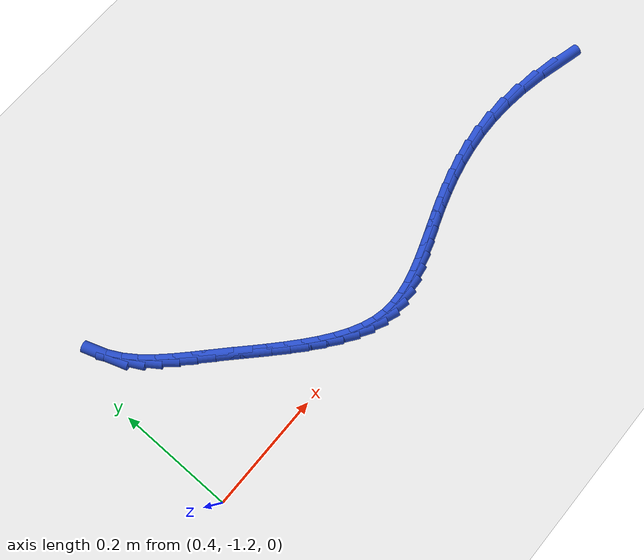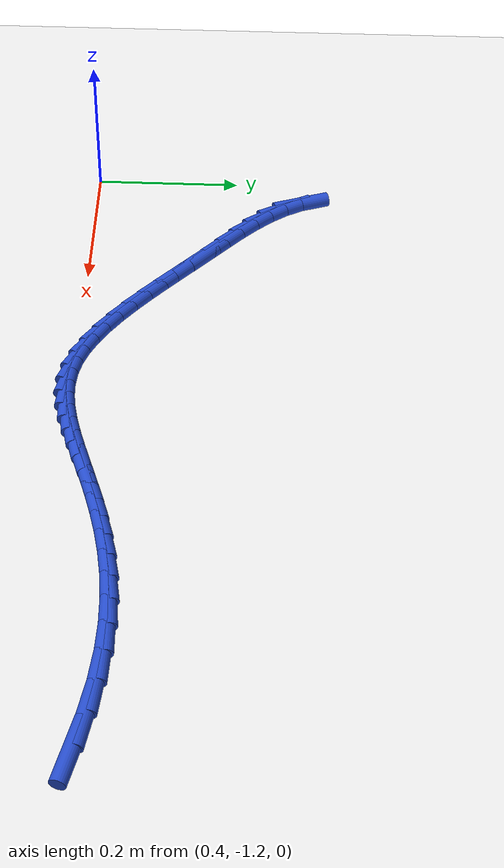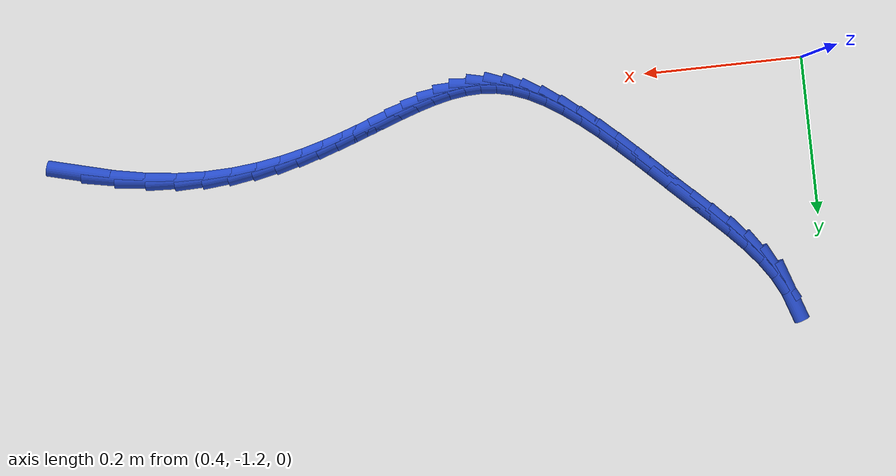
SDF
<sdf version="1.6">
 <world name="default">
  <model name="ground_plane">
   <static>1</static>
   <link name="link">
    <collision name="collision">
     <geometry><plane><normal>0 0 1</normal><size>100 100</size></plane></geometry>
     <surface><friction><ode><mu>100</mu><mu2>50</mu2></ode></friction></surface>
    </collision>
    <visual name="visual">
     <cast_shadows>0</cast_shadows>
     <geometry><plane><normal>0 0 1</normal><size>100 100</size></plane></geometry>
     <material>
      <script><uri>file://media/materials/scripts/gazebo.material</uri><name>Gazebo/WhiteGlow</name></script>
     </material>
    </visual>
   </link>
  </model>
  <model name="line">
   <link name="link_214">
    <pose>1.322616832892454 -1.1521787438533626 0.01 0 1.57 -0.25327737151940743</pose>
    <collision name="collision">
     <geometry><cylinder><radius>0.01</radius><length>0.08</length></cylinder></geometry>
    </collision>
    <visual name="visual">
     <material>
      <script><name>Gazebo/Blue</name><uri>file://media/materials/scripts/gazebo.material</uri></script>
     </material>
     <geometry><cylinder><radius>0.01</radius><length>0.08</length></cylinder></geometry>
    </visual>
   </link>
   <link name="link_215">
    <pose>1.2797320611597838 -1.141078624843671 0.01 0 1.57 -0.18833244084223533</pose>
    <collision name="collision">
     <geometry><cylinder><radius>0.01</radius><length>0.08</length></cylinder></geometry>
    </collision>
    <visual name="visual">
     <material>
      <script><name>Gazebo/Blue</name><uri>file://media/materials/scripts/gazebo.material</uri></script>
     </material>
     <geometry><cylinder><radius>0.01</radius><length>0.08</length></cylinder></geometry>
    </visual>
   </link>
   <link name="link_216">
    <pose>1.2388287740997233 -1.1332828201885006 0.01 0 1.57 -0.11613769736238322</pose>
    <collision name="collision">
     <geometry><cylinder><radius>0.01</radius><length>0.08</length></cylinder></geometry>
    </collision>
    <visual name="visual">
     <material>
      <script><name>Gazebo/Blue</name><uri>file://media/materials/scripts/gazebo.material</uri></script>
     </material>
     <geometry><cylinder><radius>0.01</radius><length>0.08</length></cylinder></geometry>
    </visual>
   </link>
   <link name="link_217">
    <pose>1.2002915263124383 -1.1287869614405426 0.01 0 1.57 -0.043032953816491144</pose>
    <collision name="collision">
     <geometry><cylinder><radius>0.01</radius><length>0.08</length></cylinder></geometry>
    </collision>
    <visual name="visual">
     <material>
      <script><name>Gazebo/Blue</name><uri>file://media/materials/scripts/gazebo.material</uri></script>
     </material>
     <geometry><cylinder><radius>0.01</radius><length>0.08</length></cylinder></geometry>
    </visual>
   </link>
   <link name="link_218">
    <pose>1.1639764863707767 -1.1272232526410821 0.01 0 1.57 0.029198336507495697</pose>
    <collision name="collision">
     <geometry><cylinder><radius>0.01</radius><length>0.08</length></cylinder></geometry>
    </collision>
    <visual name="visual">
     <material>
      <script><name>Gazebo/Blue</name><uri>file://media/materials/scripts/gazebo.material</uri></script>
     </material>
     <geometry><cylinder><radius>0.01</radius><length>0.08</length></cylinder></geometry>
    </visual>
   </link>
   <link name="link_219">
    <pose>1.1297388362713248 -1.128223219257529 0.01 0 1.57 0.09858541107569821</pose>
    <collision name="collision">
     <geometry><cylinder><radius>0.01</radius><length>0.08</length></cylinder></geometry>
    </collision>
    <visual name="visual">
     <material>
      <script><name>Gazebo/Blue</name><uri>file://media/materials/scripts/gazebo.material</uri></script>
     </material>
     <geometry><cylinder><radius>0.01</radius><length>0.08</length></cylinder></geometry>
    </visual>
   </link>
   <link name="link_220">
    <pose>1.097433758010672 -1.1314183867572931 0.01 0 1.57 0.16309706781129438</pose>
    <collision name="collision">
     <geometry><cylinder><radius>0.01</radius><length>0.08</length></cylinder></geometry>
    </collision>
    <visual name="visual">
     <material>
      <script><name>Gazebo/Blue</name><uri>file://media/materials/scripts/gazebo.material</uri></script>
     </material>
     <geometry><cylinder><radius>0.01</radius><length>0.08</length></cylinder></geometry>
    </visual>
   </link>
   <link name="link_221">
    <pose>1.0669164335854042 -1.1364402806077842 0.01 0 1.57 0.22076744469772175</pose>
    <collision name="collision">
     <geometry><cylinder><radius>0.01</radius><length>0.08</length></cylinder></geometry>
    </collision>
    <visual name="visual">
     <material>
      <script><name>Gazebo/Blue</name><uri>file://media/materials/scripts/gazebo.material</uri></script>
     </material>
     <geometry><cylinder><radius>0.01</radius><length>0.08</length></cylinder></geometry>
    </visual>
   </link>
   <link name="link_222">
    <pose>1.0380420449921102 -1.142920426276411 0.01 0 1.57 0.26977324692714455</pose>
    <collision name="collision">
     <geometry><cylinder><radius>0.01</radius><length>0.08</length></cylinder></geometry>
    </collision>
    <visual name="visual">
     <material>
      <script><name>Gazebo/Blue</name><uri>file://media/materials/scripts/gazebo.material</uri></script>
     </material>
     <geometry><cylinder><radius>0.01</radius><length>0.08</length></cylinder></geometry>
    </visual>
   </link>
   <link name="link_223">
    <pose>1.010665774227377 -1.1504903492305838 0.01 0 1.57 0.3084431883393934</pose>
    <collision name="collision">
     <geometry><cylinder><radius>0.01</radius><length>0.08</length></cylinder></geometry>
    </collision>
    <visual name="visual">
     <material>
      <script><name>Gazebo/Blue</name><uri>file://media/materials/scripts/gazebo.material</uri></script>
     </material>
     <geometry><cylinder><radius>0.01</radius><length>0.08</length></cylinder></geometry>
    </visual>
   </link>
   <link name="link_224">
    <pose>0.9846428032877926 -1.1587815749377126 0.01 0 1.57 0.33520149432809365</pose>
    <collision name="collision">
     <geometry><cylinder><radius>0.01</radius><length>0.08</length></cylinder></geometry>
    </collision>
    <visual name="visual">
     <material>
      <script><name>Gazebo/Blue</name><uri>file://media/materials/scripts/gazebo.material</uri></script>
     </material>
     <geometry><cylinder><radius>0.01</radius><length>0.08</length></cylinder></geometry>
    </visual>
   </link>
   <link name="link_225">
    <pose>0.9598283141699443 -1.1674256288652056 0.01 0 1.57 0.34846395217380877</pose>
    <collision name="collision">
     <geometry><cylinder><radius>0.01</radius><length>0.08</length></cylinder></geometry>
    </collision>
    <visual name="visual">
     <material>
      <script><name>Gazebo/Blue</name><uri>file://media/materials/scripts/gazebo.material</uri></script>
     </material>
     <geometry><cylinder><radius>0.01</radius><length>0.08</length></cylinder></geometry>
    </visual>
   </link>
   <link name="link_226">
    <pose>0.93607748887042 -1.176054036480474 0.01 0 1.57 0.346515821767103</pose>
    <collision name="collision">
     <geometry><cylinder><radius>0.01</radius><length>0.08</length></cylinder></geometry>
    </collision>
    <visual name="visual">
     <material>
      <script><name>Gazebo/Blue</name><uri>file://media/materials/scripts/gazebo.material</uri></script>
     </material>
     <geometry><cylinder><radius>0.01</radius><length>0.08</length></cylinder></geometry>
    </visual>
   </link>
   <link name="link_227">
    <pose>0.9132455093858071 -1.1842983232509265 0.01 0 1.57 0.3274128764510943</pose>
    <collision name="collision">
     <geometry><cylinder><radius>0.01</radius><length>0.08</length></cylinder></geometry>
    </collision>
    <visual name="visual">
     <material>
      <script><name>Gazebo/Blue</name><uri>file://media/materials/scripts/gazebo.material</uri></script>
     </material>
     <geometry><cylinder><radius>0.01</radius><length>0.08</length></cylinder></geometry>
    </visual>
   </link>
   <link name="link_228">
    <pose>0.8911875577126933 -1.191790014643973 0.01 0 1.57 0.28897174155513683</pose>
    <collision name="collision">
     <geometry><cylinder><radius>0.01</radius><length>0.08</length></cylinder></geometry>
    </collision>
    <visual name="visual">
     <material>
      <script><name>Gazebo/Blue</name><uri>file://media/materials/scripts/gazebo.material</uri></script>
     </material>
     <geometry><cylinder><radius>0.01</radius><length>0.08</length></cylinder></geometry>
    </visual>
   </link>
   <link name="link_229">
    <pose>0.8697588158476663 -1.1981606361270232 0.01 0 1.57 0.22896304311701524</pose>
    <collision name="collision">
     <geometry><cylinder><radius>0.01</radius><length>0.08</length></cylinder></geometry>
    </collision>
    <visual name="visual">
     <material>
      <script><name>Gazebo/Blue</name><uri>file://media/materials/scripts/gazebo.material</uri></script>
     </material>
     <geometry><cylinder><radius>0.01</radius><length>0.08</length></cylinder></geometry>
    </visual>
   </link>
   <link name="link_230">
    <pose>0.8488144657873139 -1.203041713167487 0.01 0 1.57 0.14567704107339596</pose>
    <collision name="collision">
     <geometry><cylinder><radius>0.01</radius><length>0.08</length></cylinder></geometry>
    </collision>
    <visual name="visual">
     <material>
      <script><name>Gazebo/Blue</name><uri>file://media/materials/scripts/gazebo.material</uri></script>
     </material>
     <geometry><cylinder><radius>0.01</radius><length>0.08</length></cylinder></geometry>
    </visual>
   </link>
   <link name="link_231">
    <pose>0.8282096895282233 -1.206064771232773 0.01 0 1.57 0.039008313960391755</pose>
    <collision name="collision">
     <geometry><cylinder><radius>0.01</radius><length>0.08</length></cylinder></geometry>
    </collision>
    <visual name="visual">
     <material>
      <script><name>Gazebo/Blue</name><uri>file://media/materials/scripts/gazebo.material</uri></script>
     </material>
     <geometry><cylinder><radius>0.01</radius><length>0.08</length></cylinder></geometry>
    </visual>
   </link>
   <link name="link_232">
    <pose>0.8077996690669824 -1.206861335790292 0.01 0 1.57 -0.08810121935314982</pose>
    <collision name="collision">
     <geometry><cylinder><radius>0.01</radius><length>0.08</length></cylinder></geometry>
    </collision>
    <visual name="visual">
     <material>
      <script><name>Gazebo/Blue</name><uri>file://media/materials/scripts/gazebo.material</uri></script>
     </material>
     <geometry><cylinder><radius>0.01</radius><length>0.08</length></cylinder></geometry>
    </visual>
   </link>
   <link name="link_233">
    <pose>0.7874395864001795 -1.2050629323074529 0.01 0 1.57 -0.2287228642058505</pose>
    <collision name="collision">
     <geometry><cylinder><radius>0.01</radius><length>0.08</length></cylinder></geometry>
    </collision>
    <visual name="visual">
     <material>
      <script><name>Gazebo/Blue</name><uri>file://media/materials/scripts/gazebo.material</uri></script>
     </material>
     <geometry><cylinder><radius>0.01</radius><length>0.08</length></cylinder></geometry>
    </visual>
   </link>
   <link name="link_234">
    <pose>0.7669846235244007 -1.2003010862516656 0.01 0 1.57 -0.36886276474908986</pose>
    <collision name="collision">
     <geometry><cylinder><radius>0.01</radius><length>0.08</length></cylinder></geometry>
    </collision>
    <visual name="visual">
     <material>
      <script><name>Gazebo/Blue</name><uri>file://media/materials/scripts/gazebo.material</uri></script>
     </material>
     <geometry><cylinder><radius>0.01</radius><length>0.08</length></cylinder></geometry>
    </visual>
   </link>
   <link name="link_235">
    <pose>0.7463140542827762 -1.1923107656877956 0.01 0 1.57 -0.48384528377010083</pose>
    <collision name="collision">
     <geometry><cylinder><radius>0.01</radius><length>0.08</length></cylinder></geometry>
    </collision>
    <visual name="visual">
     <material>
      <script><name>Gazebo/Blue</name><uri>file://media/materials/scripts/gazebo.material</uri></script>
     </material>
     <geometry><cylinder><radius>0.01</radius><length>0.08</length></cylinder></geometry>
    </visual>
   </link>
   <link name="link_236">
    <pose>0.7254251219291145 -1.181333461177431 0.01 0 1.57 -0.5720232409185585</pose>
    <collision name="collision">
     <geometry><cylinder><radius>0.01</radius><length>0.08</length></cylinder></geometry>
    </collision>
    <visual name="visual">
     <material>
      <script><name>Gazebo/Blue</name><uri>file://media/materials/scripts/gazebo.material</uri></script>
     </material>
     <geometry><cylinder><radius>0.01</radius><length>0.08</length></cylinder></geometry>
    </visual>
   </link>
   <link name="link_237">
    <pose>0.7043511210496612 -1.1677654560442094 0.01 0 1.57 -0.6387522099463929</pose>
    <collision name="collision">
     <geometry><cylinder><radius>0.01</radius><length>0.08</length></cylinder></geometry>
    </collision>
    <visual name="visual">
     <material>
      <script><name>Gazebo/Blue</name><uri>file://media/materials/scripts/gazebo.material</uri></script>
     </material>
     <geometry><cylinder><radius>0.01</radius><length>0.08</length></cylinder></geometry>
    </visual>
   </link>
   <link name="link_238">
    <pose>0.683125355257139 -1.1520030723685397 0.01 0 1.57 -0.6884451736848316</pose>
    <collision name="collision">
     <geometry><cylinder><radius>0.01</radius><length>0.08</length></cylinder></geometry>
    </collision>
    <visual name="visual">
     <material>
      <script><name>Gazebo/Blue</name><uri>file://media/materials/scripts/gazebo.material</uri></script>
     </material>
     <geometry><cylinder><radius>0.01</radius><length>0.08</length></cylinder></geometry>
    </visual>
   </link>
   <link name="link_239">
    <pose>0.6617811281642705 -1.1344426322308312 0.01 0 1.57 -0.7243916381162762</pose>
    <collision name="collision">
     <geometry><cylinder><radius>0.01</radius><length>0.08</length></cylinder></geometry>
    </collision>
    <visual name="visual">
     <material>
      <script><name>Gazebo/Blue</name><uri>file://media/materials/scripts/gazebo.material</uri></script>
     </material>
     <geometry><cylinder><radius>0.01</radius><length>0.08</length></cylinder></geometry>
    </visual>
   </link>
   <link name="link_240">
    <pose>0.6403517433837775 -1.1154804577114927 0.01 0 1.57 -0.7488958095648307</pose>
    <collision name="collision">
     <geometry><cylinder><radius>0.01</radius><length>0.08</length></cylinder></geometry>
    </collision>
    <visual name="visual">
     <material>
      <script><name>Gazebo/Blue</name><uri>file://media/materials/scripts/gazebo.material</uri></script>
     </material>
     <geometry><cylinder><radius>0.01</radius><length>0.08</length></cylinder></geometry>
    </visual>
   </link>
   <link name="link_241">
    <pose>0.6188705045283833 -1.0955128708909339 0.01 0 1.57 -0.7634627611204864</pose>
    <collision name="collision">
     <geometry><cylinder><radius>0.01</radius><length>0.08</length></cylinder></geometry>
    </collision>
    <visual name="visual">
     <material>
      <script><name>Gazebo/Blue</name><uri>file://media/materials/scripts/gazebo.material</uri></script>
     </material>
     <geometry><cylinder><radius>0.01</radius><length>0.08</length></cylinder></geometry>
    </visual>
   </link>
   <link name="link_242">
    <pose>0.5973707152108099 -1.0749361938495636 0.01 0 1.57 -0.76894549032722</pose>
    <collision name="collision">
     <geometry><cylinder><radius>0.01</radius><length>0.08</length></cylinder></geometry>
    </collision>
    <visual name="visual">
     <material>
      <script><name>Gazebo/Blue</name><uri>file://media/materials/scripts/gazebo.material</uri></script>
     </material>
     <geometry><cylinder><radius>0.01</radius><length>0.08</length></cylinder></geometry>
    </visual>
   </link>
   <link name="link_243">
    <pose>0.57588567904378 -1.054146748667791 0.01 0 1.57 -0.765636526536869</pose>
    <collision name="collision">
     <geometry><cylinder><radius>0.01</radius><length>0.08</length></cylinder></geometry>
    </collision>
    <visual name="visual">
     <material>
      <script><name>Gazebo/Blue</name><uri>file://media/materials/scripts/gazebo.material</uri></script>
     </material>
     <geometry><cylinder><radius>0.01</radius><length>0.08</length></cylinder></geometry>
    </visual>
   </link>
   <link name="link_244">
    <pose>0.5544487600184076 -1.0335407742063476 0.01 0 1.57 -0.7600028616081714</pose>
    <collision name="collision">
     <geometry><cylinder><radius>0.01</radius><length>0.08</length></cylinder></geometry>
    </collision>
    <visual name="visual">
     <material>
      <script><name>Gazebo/Blue</name><uri>file://media/materials/scripts/gazebo.material</uri></script>
     </material>
     <geometry><cylinder><radius>0.01</radius><length>0.08</length></cylinder></geometry>
    </visual>
   </link>
   <link name="link_245">
    <pose>0.5332097612014148 -1.0133540210768475 0.01 0 1.57 -0.7729383110882005</pose>
    <collision name="collision">
     <geometry><cylinder><radius>0.01</radius><length>0.08</length></cylinder></geometry>
    </collision>
    <visual name="visual">
     <material>
      <script><name>Gazebo/Blue</name><uri>file://media/materials/scripts/gazebo.material</uri></script>
     </material>
     <geometry><cylinder><radius>0.01</radius><length>0.08</length></cylinder></geometry>
    </visual>
   </link>
   <link name="link_246">
    <pose>0.5126776116218743 -0.9933272557405366 0.01 0 1.57 -0.8100655741876903</pose>
    <collision name="collision">
     <geometry><cylinder><radius>0.01</radius><length>0.08</length></cylinder></geometry>
    </collision>
    <visual name="visual">
     <material>
      <script><name>Gazebo/Blue</name><uri>file://media/materials/scripts/gazebo.material</uri></script>
     </material>
     <geometry><cylinder><radius>0.01</radius><length>0.08</length></cylinder></geometry>
    </visual>
   </link>
   <link name="link_247">
    <pose>0.49343025728967077 -0.9731061183932534 0.01 0 1.57 -0.8738914297228159</pose>
    <collision name="collision">
     <geometry><cylinder><radius>0.01</radius><length>0.08</length></cylinder></geometry>
    </collision>
    <visual name="visual">
     <material>
      <script><name>Gazebo/Blue</name><uri>file://media/materials/scripts/gazebo.material</uri></script>
     </material>
     <geometry><cylinder><radius>0.01</radius><length>0.08</length></cylinder></geometry>
    </visual>
   </link>
   <link name="link_248">
    <pose>0.47604564421469014 -0.9523362492308378 0.01 0 1.57 -0.9671390439938212</pose>
    <collision name="collision">
     <geometry><cylinder><radius>0.01</radius><length>0.08</length></cylinder></geometry>
    </collision>
    <visual name="visual">
     <material>
      <script><name>Gazebo/Blue</name><uri>file://media/materials/scripts/gazebo.material</uri></script>
     </material>
     <geometry><cylinder><radius>0.01</radius><length>0.08</length></cylinder></geometry>
    </visual>
   </link>
   <link name="link_249">
    <pose>0.4611017184068161 -0.9306632884491267 0.01 0 1.57 -1.0912262931333208</pose>
    <collision name="collision">
     <geometry><cylinder><radius>0.01</radius><length>0.08</length></cylinder></geometry>
    </collision>
    <visual name="visual">
     <material>
      <script><name>Gazebo/Blue</name><uri>file://media/materials/scripts/gazebo.material</uri></script>
     </material>
     <geometry><cylinder><radius>0.01</radius><length>0.08</length></cylinder></geometry>
    </visual>
   </link>
   <link name="link_250">
    <pose>0.44917642587593437 -0.9077328762439598 0.01 0 1.57 -1.2434886312114062</pose>
    <collision name="collision">
     <geometry><cylinder><radius>0.01</radius><length>0.08</length></cylinder></geometry>
    </collision>
    <visual name="visual">
     <material>
      <script><name>Gazebo/Blue</name><uri>file://media/materials/scripts/gazebo.material</uri></script>
     </material>
     <geometry><cylinder><radius>0.01</radius><length>0.08</length></cylinder></geometry>
    </visual>
   </link>
  </model>
 </world>
</sdf>
